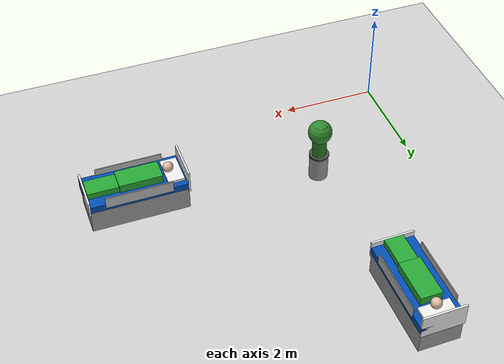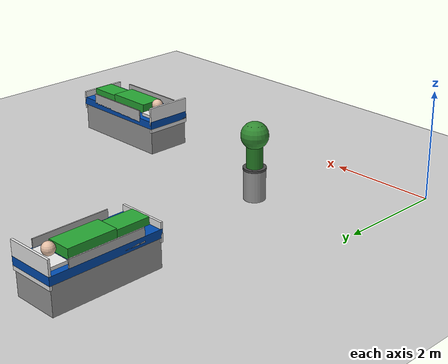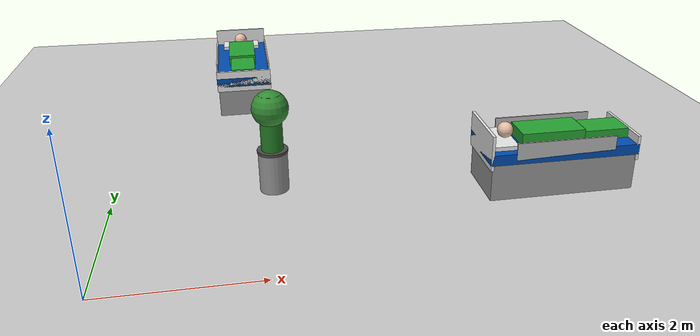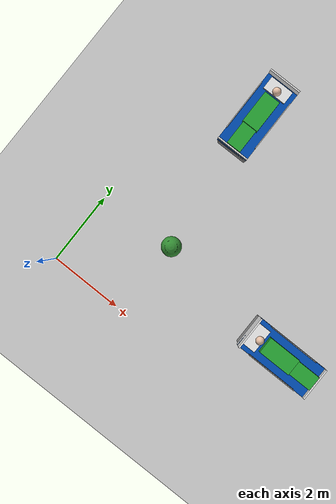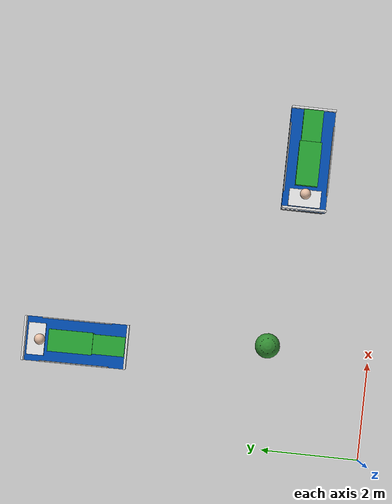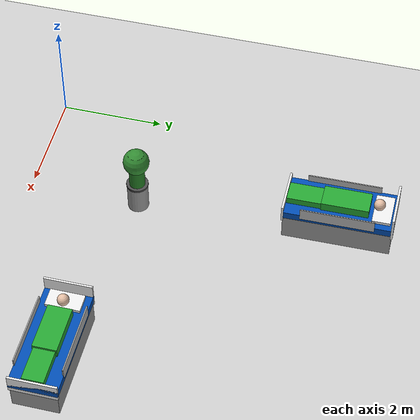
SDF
<sdf version="1.7">
 <world name="default">
  <model name="ground_plane">
   <static>1</static>
   <link name="link">
    <collision name="collision">
     <geometry><plane><normal>0 0 1</normal><size>100 100</size></plane></geometry>
     <surface><friction><ode><mu>100</mu><mu2>50</mu2></ode></friction></surface>
    </collision>
    <visual name="visual">
     <cast_shadows>0</cast_shadows>
     <geometry><plane><normal>0 0 1</normal><size>100 100</size></plane></geometry>
     <material>
      <script><uri>file://media/materials/scripts/gazebo.material</uri><name>Gazebo/Grey</name></script>
     </material>
    </visual>
   </link>
  </model>
  <model name="hospital_bed_with_patient">
   <static>1</static>
   <link name="link">
    <collision name="mattress_collision">
     <pose>0 0 0.6 0 -0 0</pose>
     <geometry><box><size>2.1 0.9 0.15</size></box></geometry>
    </collision>
    <collision name="base_collision">
     <pose>0 0 0.25 0 -0 0</pose>
     <geometry><box><size>2 0.85 0.5</size></box></geometry>
    </collision>
    <visual name="base_frame_visual">
     <pose>0 0 0.26 0 -0 0</pose>
     <geometry><box><size>2.05 0.86 0.52</size></box></geometry>
     <material>
      <script><uri>file://media/materials/scripts/gazebo.material</uri><name>Gazebo/Grey</name></script>
     </material>
    </visual>
    <visual name="mattress_visual">
     <pose>0 0 0.6 0 -0 0</pose>
     <geometry><box><size>2.1 0.9 0.15</size></box></geometry>
     <material>
      <ambient>0 0.2 0.5 1</ambient>
      <diffuse>0 0.3 0.7 1</diffuse>
      <specular>0.1 0.1 0.1 1</specular>
     </material>
    </visual>
    <visual name="headboard_visual">
     <pose>-1.03 0 0.7 0 -0 0</pose>
     <geometry><box><size>0.04 0.9 0.5</size></box></geometry>
     <material>
      <script><uri>file://media/materials/scripts/gazebo.material</uri><name>Gazebo/White</name></script>
     </material>
    </visual>
    <visual name="footboard_visual">
     <pose>1.03 0 0.62 0 -0 0</pose>
     <geometry><box><size>0.04 0.9 0.35</size></box></geometry>
     <material>
      <script><uri>file://media/materials/scripts/gazebo.material</uri><name>Gazebo/White</name></script>
     </material>
    </visual>
    <visual name="left_rail">
     <pose>0 0.44 0.7 0 -0 0</pose>
     <geometry><box><size>1.4 0.02 0.25</size></box></geometry>
     <material>
      <script><uri>file://media/materials/scripts/gazebo.material</uri><name>Gazebo/ZincChromate</name></script>
     </material>
    </visual>
    <visual name="right_rail">
     <pose>0 -0.44 0.7 0 -0 0</pose>
     <geometry><box><size>1.4 0.02 0.25</size></box></geometry>
     <material>
      <script><uri>file://media/materials/scripts/gazebo.material</uri><name>Gazebo/ZincChromate</name></script>
     </material>
    </visual>
    <visual name="pillow_visual">
     <pose>-0.8 0 0.7 0 -0 0</pose>
     <geometry><box><size>0.35 0.65 0.07</size></box></geometry>
     <material>
      <script><uri>file://media/materials/scripts/gazebo.material</uri><name>Gazebo/White</name></script>
     </material>
    </visual>
    <visual name="patient_torso">
     <pose>-0.1 0 0.76 0 -0 0</pose>
     <geometry><box><size>0.9 0.45 0.18</size></box></geometry>
     <material>
      <script><uri>file://media/materials/scripts/gazebo.material</uri><name>Gazebo/Green</name></script>
     </material>
    </visual>
    <visual name="patient_head">
     <pose>-0.72 0 0.84 0 -0 0</pose>
     <geometry><sphere><radius>0.11</radius></sphere></geometry>
     <material><ambient>0.9 0.75 0.65 1</ambient><diffuse>0.9 0.75 0.65 1</diffuse></material>
    </visual>
    <visual name="patient_legs">
     <pose>0.6 0 0.74 0 -0 0</pose>
     <geometry><box><size>0.8 0.4 0.14</size></box></geometry>
     <material>
      <script><uri>file://media/materials/scripts/gazebo.material</uri><name>Gazebo/Green</name></script>
     </material>
    </visual>
   </link>
   <pose>1.8021 5.99731 0 0 0 -1.55914</pose>
  </model>
  <model name="hospital_bed_with_patient_1">
   <static>1</static>
   <link name="link">
    <collision name="mattress_collision">
     <pose>0 0 0.6 0 -0 0</pose>
     <geometry><box><size>2.1 0.9 0.15</size></box></geometry>
    </collision>
    <collision name="base_collision">
     <pose>0 0 0.25 0 -0 0</pose>
     <geometry><box><size>2 0.85 0.5</size></box></geometry>
    </collision>
    <visual name="base_frame_visual">
     <pose>0 0 0.26 0 -0 0</pose>
     <geometry><box><size>2.05 0.86 0.52</size></box></geometry>
     <material>
      <script><uri>file://media/materials/scripts/gazebo.material</uri><name>Gazebo/Grey</name></script>
     </material>
    </visual>
    <visual name="mattress_visual">
     <pose>0 0 0.6 0 -0 0</pose>
     <geometry><box><size>2.1 0.9 0.15</size></box></geometry>
     <material>
      <ambient>0 0.2 0.5 1</ambient>
      <diffuse>0 0.3 0.7 1</diffuse>
      <specular>0.1 0.1 0.1 1</specular>
     </material>
    </visual>
    <visual name="headboard_visual">
     <pose>-1.03 0 0.7 0 -0 0</pose>
     <geometry><box><size>0.04 0.9 0.5</size></box></geometry>
     <material>
      <script><uri>file://media/materials/scripts/gazebo.material</uri><name>Gazebo/White</name></script>
     </material>
    </visual>
    <visual name="footboard_visual">
     <pose>1.03 0 0.62 0 -0 0</pose>
     <geometry><box><size>0.04 0.9 0.35</size></box></geometry>
     <material>
      <script><uri>file://media/materials/scripts/gazebo.material</uri><name>Gazebo/White</name></script>
     </material>
    </visual>
    <visual name="left_rail">
     <pose>0 0.44 0.7 0 -0 0</pose>
     <geometry><box><size>1.4 0.02 0.25</size></box></geometry>
     <material>
      <script><uri>file://media/materials/scripts/gazebo.material</uri><name>Gazebo/ZincChromate</name></script>
     </material>
    </visual>
    <visual name="right_rail">
     <pose>0 -0.44 0.7 0 -0 0</pose>
     <geometry><box><size>1.4 0.02 0.25</size></box></geometry>
     <material>
      <script><uri>file://media/materials/scripts/gazebo.material</uri><name>Gazebo/ZincChromate</name></script>
     </material>
    </visual>
    <visual name="pillow_visual">
     <pose>-0.8 0 0.7 0 -0 0</pose>
     <geometry><box><size>0.35 0.65 0.07</size></box></geometry>
     <material>
      <script><uri>file://media/materials/scripts/gazebo.material</uri><name>Gazebo/White</name></script>
     </material>
    </visual>
    <visual name="patient_torso">
     <pose>-0.1 0 0.76 0 -0 0</pose>
     <geometry><box><size>0.9 0.45 0.18</size></box></geometry>
     <material>
      <script><uri>file://media/materials/scripts/gazebo.material</uri><name>Gazebo/Green</name></script>
     </material>
    </visual>
    <visual name="patient_head">
     <pose>-0.72 0 0.84 0 -0 0</pose>
     <geometry><sphere><radius>0.11</radius></sphere></geometry>
     <material><ambient>0.9 0.75 0.65 1</ambient><diffuse>0.9 0.75 0.65 1</diffuse></material>
    </visual>
    <visual name="patient_legs">
     <pose>0.6 0 0.74 0 -0 0</pose>
     <geometry><box><size>0.8 0.4 0.14</size></box></geometry>
     <material>
      <script><uri>file://media/materials/scripts/gazebo.material</uri><name>Gazebo/Green</name></script>
     </material>
    </visual>
   </link>
   <pose>6.00859 1.69545 0 0 -0 0</pose>
  </model>
  <model name="floor_plant_0">
   <static>1</static>
   <link name="link">
    <collision name="planter_collision">
     <pose>0 0 0.7 0 -0 0</pose>
     <geometry><cylinder><radius>0.22</radius><length>1.4</length></cylinder></geometry>
    </collision>
    <visual name="planter_base_visual">
     <pose>0 0 0.3 0 -0 0</pose>
     <geometry><cylinder><radius>0.2</radius><length>0.6</length></cylinder></geometry>
     <material>
      <script><uri>file://media/materials/scripts/gazebo.material</uri><name>Gazebo/Grey</name></script>
     </material>
    </visual>
    <visual name="planter_rim_visual">
     <pose>0 0 0.59 0 -0 0</pose>
     <geometry><cylinder><radius>0.21</radius><length>0.04</length></cylinder></geometry>
     <material>
      <script><uri>file://media/materials/scripts/gazebo.material</uri><name>Gazebo/DarkGrey</name></script>
     </material>
    </visual>
    <visual name="soil_visual">
     <pose>0 0 0.58 0 -0 0</pose>
     <geometry><cylinder><radius>0.19</radius><length>0.02</length></cylinder></geometry>
     <material>
      <script><uri>file://media/materials/scripts/gazebo.material</uri><name>Gazebo/Dirt</name></script>
     </material>
    </visual>
    <visual name="plant_leaves_main">
     <pose>0 0 1 0 -0 0</pose>
     <geometry><cylinder><radius>0.15</radius><length>0.8</length></cylinder></geometry>
     <material><ambient>0.1 0.4 0.1 1</ambient><diffuse>0.15 0.5 0.15 1</diffuse></material>
    </visual>
    <visual name="plant_leaves_top">
     <pose>0 0 1.2 0 -0 0</pose>
     <geometry><sphere><radius>0.25</radius></sphere></geometry>
     <material><ambient>0.1 0.4 0.1 1</ambient><diffuse>0.2 0.55 0.2 1</diffuse></material>
    </visual>
   </link>
   <pose>2.15345 2.14885 0 0 -0 0</pose>
  </model>
 </world>
</sdf>
